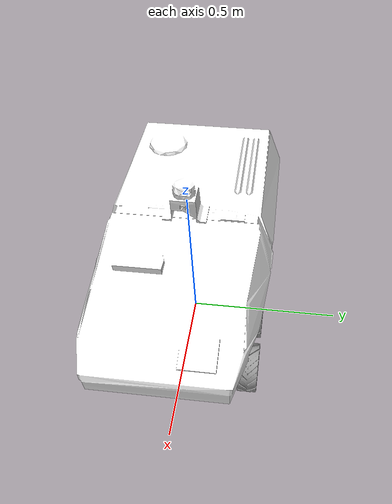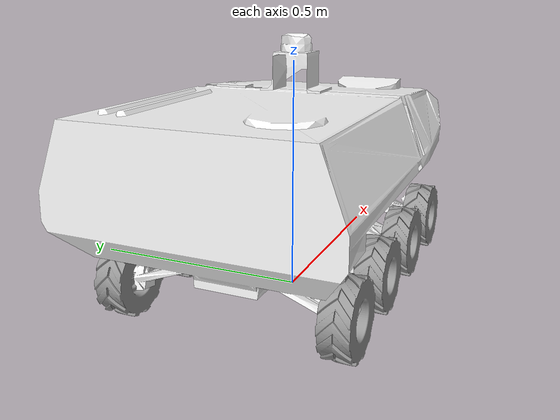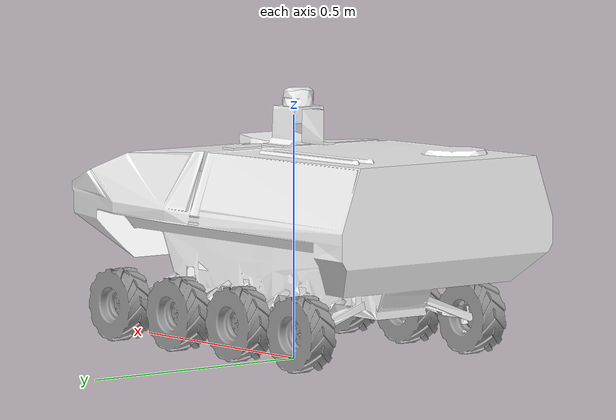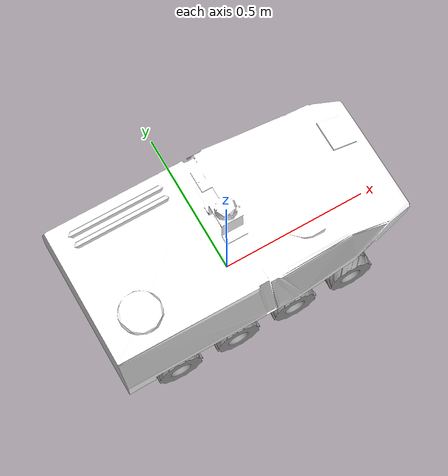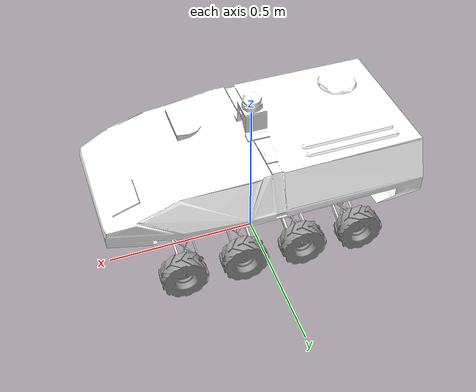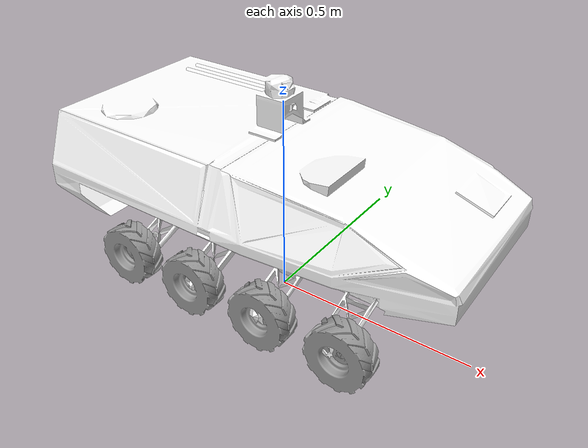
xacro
<?xml version="1.0"?>
<robot name="bot" xmlns:xacro="http://www.ros.org/wiki/xacro">

<xacro:property name="wheelRadius" value="0.0732"/>
<xacro:property name="wheelLength" value="0.05575"/>
<xacro:property name="leftWheel" value="left_wheel"/>
<xacro:property name="rightWheel" value="right_wheel"/>

<xacro:macro name="wheel" params="side num reflect xv yv zv">
  <link name="${side}_${num}">
    <visual>
      <origin rpy="0 1.57079632679 0" xyz="${xv} ${yv} ${zv}"/>
      <geometry>
	      <mesh filename="package://bot_description/meshes/wheel.dae" />
      </geometry>
      <material name="Grey"/>
    </visual>
    <collision>
	    <origin rpy="3.14592 0 0" xyz="${xv} ${yv} ${zv}"/>
      <geometry>
         <cylinder radius="0.07" length="0.08"/>
      </geometry>
    </collision>
    <inertial>

      <mass value = "1" />
      <inertia ixx="0.0017583" ixy="0.0" ixz="0.0" iyy="0.0017583" iyz="0.0" izz="0.00245"/>
    </inertial>

</link>

  <link name="${side}_${num}_dummy">
    <inertial>
      <mass value = "0.6" />
      <inertia ixx="0.001" ixy="0.0" ixz="0.0" iyy="0.001" iyz="0.0" izz="0.001"/>
    </inertial>
  </link>

 <joint name="${side}_${num}_rev" type="revolute">
    <axis xyz="0 0 1" />
    <limit lower="-0.523599" upper="0.523599" effort="10000.0" velocity="100"/>
    <parent link="base_link"/>
    <child link="${side}_${num}_dummy"/>
    <origin rpy="0 0 0" xyz="${0.3 - (0.2 * num)} ${0.2 * reflect}  0.1"/>
  </joint>

  <transmission name="${side}_${num}_trans2">
    <type>transmission_interface/SimpleTransmission</type>
    <actuator name="${side}_${num}_actuator2">
      <mechanicalReduction>1</mechanicalReduction>
      <hardwareInterface>hardware_interface/VelocityJointInterface </hardwareInterface>
    </actuator>
    <joint name="${side}_${num}_rev">
      <hardwareInterface>hardware_interface/VelocityJointInterface </hardwareInterface>
    </joint>
  </transmission>

  <joint name="${side}_${num}_joint" type="continuous">
    <axis xyz="0 0 1" />
    <limit effort="10000.0" velocity="100"/>
    <parent link="${side}_${num}_dummy"/>
    <child link="${side}_${num}"/>
    <origin rpy="0 ${3.14592/2} 1.57079632679" xyz="0 0 0"/>
  </joint>

  <gazebo reference="${side}_${num}_link">
    <material>Gazebo/Grey</material>
  </gazebo>

 <transmission name="${side}_${num}_trans">
    <type>transmission_interface/SimpleTransmission</type>
    <actuator name="${side}_${num}_actuator">
      <mechanicalReduction>1</mechanicalReduction>
      <hardwareInterface>hardware_interface/VelocityJointInterface</hardwareInterface>
    </actuator>
    <joint name="${side}_${num}_joint">
      <hardwareInterface>hardware_interface/VelocityJointInterface</hardwareInterface>
    </joint>
  </transmission>
</xacro:macro>

<!-- ============================= SENSORS ========================================= -->
<link name="hokuyo_link">
        <visual>
			<origin rpy="0 0 0" xyz="0 0 0"/>
			<material name="blue"/>
        <geometry>
          		<cylinder length="0.001" radius="0.001"/>
        </geometry>
        </visual>
    </link>

	<joint name="hokuyo_joint" type="fixed">
		<parent link="base_link"/>
		<child link="hokuyo_link"/>
		<origin xyz="0.0 0.0 0.48" rpy="0 0 0" />
	</joint>

	<gazebo reference="hokuyo_link">
          <material>Gazebo/White</material>
	    <sensor name="head_hokuyo_sensor" type="ray">
	      <pose>0.05 0 0 0 0 0</pose>
	      <visualize>false</visualize>
	      <update_rate>40</update_rate>
	      <ray>
	        <scan>
	          <horizontal>
	            <samples>1440</samples>
	            <resolution>1</resolution>
	            <min_angle>-3.141592</min_angle>
	            <max_angle>3.141592</max_angle>
	          </horizontal>
	        </scan>
	        <range>
	          <min>0.10</min>
	          <max>25.0</max>
	          <resolution>0.001</resolution>
	        </range>
	      </ray>
	      <plugin filename="libgazebo_ros_laser.so" name="gazebo_ros_head_hokuyo_controller">
	        <topicName>/bot/scan</topicName>
	        <frameName>hokuyo_link</frameName>
	      </plugin>
	    </sensor>
  	</gazebo>

  <material name="blue">
    <color rgba="0 0 0.8 1"/>
</material>

  <material name="white">
    <color rgba="1 1 1 1"/>
  </material>

 <material name="black">
    <color rgba="0 0 0 1"/>
  </material>

<!-- ======================= ECV Model & Meshes =============================== -->
  <link name="base_link">
    <visual>
      <geometry>
        <mesh filename="package://bot_description/meshes/TrueECV.dae"/>
      </geometry>
      <origin rpy="0 0 1.5712645" xyz="0.02 -0.007 0.31"/>
      <material name="white"/>

    </visual>
    <collision>
      <geometry>
          <box size="0.4 1.0 0.3"/>
      </geometry>
      <origin rpy="0 0 1.5712645" xyz="0.02 -0.007 0.31"/>
    </collision>

    <inertial>
      <origin rpy="0 0 0" xyz="0.02 -0.007 0.31"/>
      <mass value = "1" />
      <inertia ixx="0.0208" ixy="0.0" ixz="0.0" iyy="0.097" iyz="0.0" izz="0.097"/>
    </inertial>
  </link>

<xacro:wheel side="left_wheel" num="0" reflect="1" xv="0" yv="0" zv="0.02"/>
<xacro:wheel side="left_wheel" num="1" reflect="1" xv="0" yv="0" zv="0.02"/>
<xacro:wheel side="left_wheel" num="2" reflect="1" xv="0" yv="0" zv="0.02"/>
<xacro:wheel side="left_wheel" num="3" reflect="1" xv="0" yv="0" zv="0.02"/>
<xacro:wheel side="right_wheel" num="0" reflect="-1" xv="0" yv="0" zv="-0.02"/>
<xacro:wheel side="right_wheel" num="1" reflect="-1" xv="0" yv="0" zv="-0.02"/>
<xacro:wheel side="right_wheel" num="2" reflect="-1" xv="0" yv="0" zv="-0.02"/>
<xacro:wheel side="right_wheel" num="3" reflect="-1" xv="0" yv="0" zv="-0.02"/>

  <gazebo>
    <plugin name="gazebo_ros_control" filename="libgazebo_ros_control.so">
    <robotNamespace>/bot</robotNamespace>
        <robotSimType>gazebo_ros_control/DefaultRobotHWSim</robotSimType>
  </plugin>

  <plugin name="p3d_base_controller" filename="libgazebo_ros_p3d.so">
    <alwaysOn>true</alwaysOn>
    <updateRate>50.0</updateRate>
    <bodyName>base_link</bodyName>
    <topicName>/odom</topicName>
    <gaussianNoise>0.01</gaussianNoise>
    <frameName>world</frameName>
    <xyzOffsets>0 0 0</xyzOffsets>
    <rpyOffsets>0 0 0</rpyOffsets>
  </plugin>

  </gazebo>

</robot>
